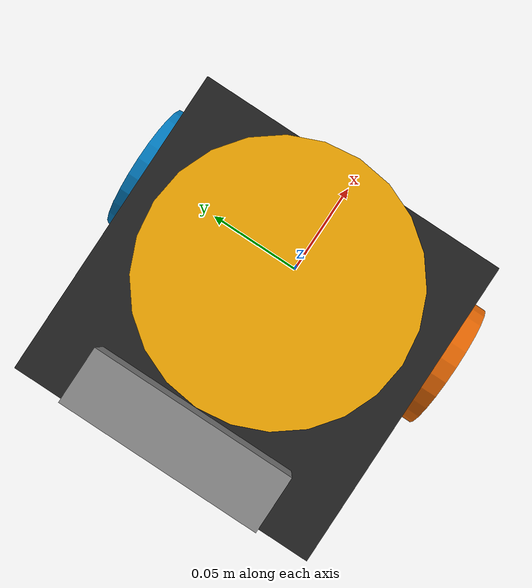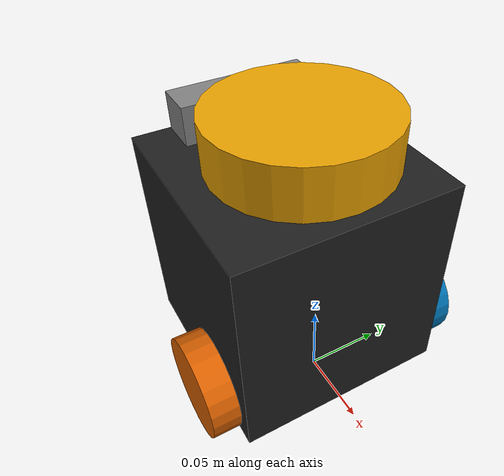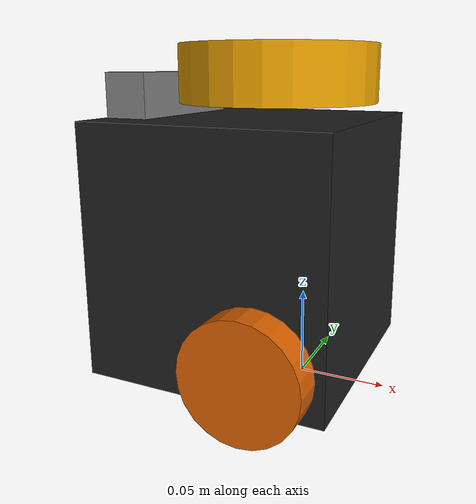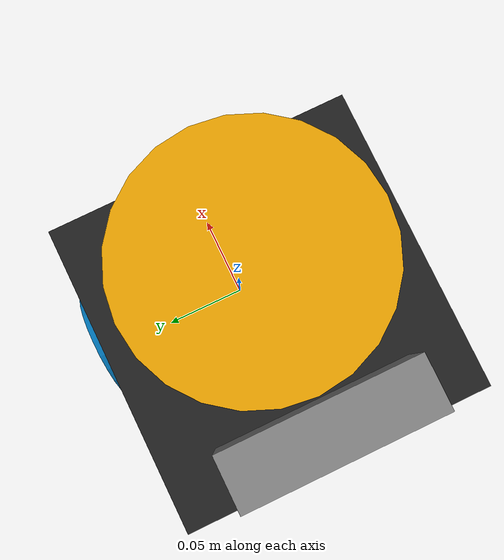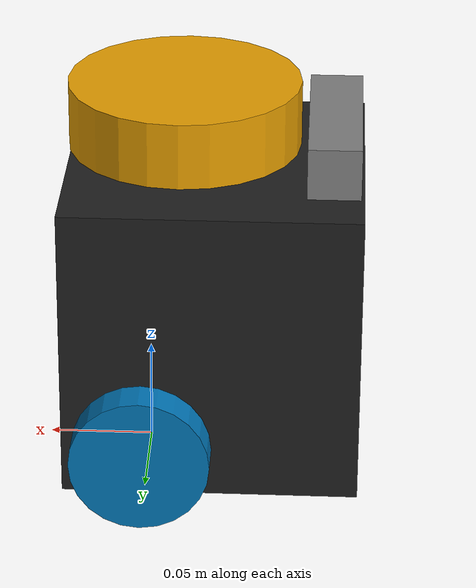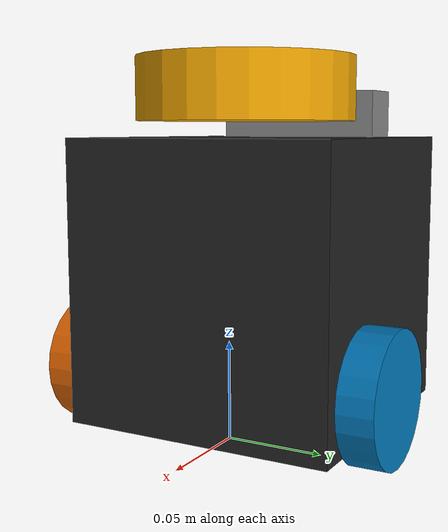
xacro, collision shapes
<?xml version="1.0" ?>
<robot name="turtlebot3_burger" xmlns:xacro="http://ros.org/wiki/xacro">

  <xacro:include filename="$(find turtlebot3_description)/urdf/common_properties.xacro"/>
  <xacro:include filename="$(find turtlebot3_description)/urdf/turtlebot3_burger.gazebo.xacro"/>

  <!-- ######################################################################## Intel Realsense D435 Camera #################################################### -->
  <!-- Properties -->

  <xacro:property name="M_PI" value="3.1415926535897931" />

  <!-- The following values are approximate, and the camera node
  publishing TF values with actual calibrated camera extrinsic values -->
  <xacro:property name="d435_cam_depth_to_left_ir_offset" value="0.0"/>
  <xacro:property name="d435_cam_depth_to_right_ir_offset" value="-0.050"/>
  <xacro:property name="d435_cam_depth_to_color_offset" value="0.015"/>

  <!-- The following values model the aluminum peripherial case for the
  D435 camera, with the camera joint represented by the actual
  peripherial camera tripod mount -->
  <xacro:property name="d435_cam_width" value="0.090"/>
  <xacro:property name="d435_cam_height" value="0.025"/>
  <xacro:property name="d435_cam_depth" value="0.02505"/>
  <xacro:property name="d435_cam_mount_from_center_offset" value="0.0149"/>

  <!-- The following offset is relative the the physical D435 camera peripherial
  camera tripod mount -->
  <xacro:property name="d435_cam_depth_px" value="${d435_cam_mount_from_center_offset}"/>
  <xacro:property name="d435_cam_depth_py" value="0.0175"/>
  <xacro:property name="d435_cam_depth_pz" value="${d435_cam_height/2}"/>

  <material name="aluminum">
  	<color rgba="0.5 0.5 0.5 1"/>
  </material>

  <!-- camera body, with origin at bottom screw mount -->
  <joint name="realsense_joint" type="fixed">
  	<parent link="base_link"/>
  	<child link="camera_bottom_screw_frame" />
        <origin xyz="-0.08788 0 0.141257" rpy="0 0 3.14159"/>
        <axis xyz="0 0 1"/>
  </joint>

 <link name="camera_bottom_screw_frame"/>

 <joint name="camera_link_joint" type="fixed">
      <origin xyz="0 0.0175 0.0125" rpy="0 0 0"/>
      <parent link="camera_bottom_screw_frame"/>
      <child link="camera_link" />
 </joint>

 <link name="camera_link">
      <visual>
      <origin xyz="0.0149 -0.02505 0" rpy="1.570796327 0 1.570796327"/>
        <geometry>
          <mesh filename="package://turtlebot3_description/meshes/realsense/d435.dae" />

        </geometry>
        <material name="aluminum"/>
      </visual>
      <collision>
        <origin xyz="0 -0.0175 0" rpy="0 0 0"/>
        <geometry>
        <box size="0.02505 0.090 0.025"/>
        </geometry>
      </collision>
      <inertial>
        <!-- The following are not reliable values, and should not be used for modeling -->
        <mass value="0.564" />
        <origin xyz="0 0 0" />
        <inertia ixx="0.003881243" ixy="0.0" ixz="0.0" iyy="0.000498940" iyz="0.0" izz="0.003879257" />
      </inertial>
   </link>

   <!-- camera depth joints and links -->
    <joint name="camera_depth_joint" type="fixed">
      <origin xyz="0 0 0" rpy="0 0 0"/>
      <parent link="camera_link"/>
      <child link="camera_depth_frame" />
    </joint>
    <link name="camera_depth_frame"/>

    <joint name="camera_depth_optical_joint" type="fixed">
      <origin xyz="0 0 0" rpy="-1.570796327 0 -1.570796327" />
      <parent link="camera_depth_frame" />
      <child link="camera_depth_optical_frame" />
    </joint>
    <link name="camera_depth_optical_frame"/>

    <!-- camera left IR joints and links -->
    <joint name="camera_left_ir_joint" type="fixed">
      <origin xyz="0 0.0 0" rpy="0 0 0" />
      <parent link="camera_depth_frame" />
      <child link="camera_left_ir_frame" />
    </joint>
    <link name="camera_left_ir_frame"/>

    <joint name="camera_left_ir_optical_joint" type="fixed">
      <origin xyz="0 0 0" rpy="-1.570796327 0 -1.570796327" />
      <parent link="camera_left_ir_frame" />
      <child link="camera_left_ir_optical_frame" />
    </joint>
    <link name="camera_left_ir_optical_frame"/>

    <!-- camera right IR joints and links -->
    <joint name="camera_right_ir_joint" type="fixed">
      <origin xyz="0 -0.050 0" rpy="0 0 0" />
      <parent link="camera_depth_frame" />
      <child link="camera_right_ir_frame" />
    </joint>
    <link name="camera_right_ir_frame"/>

    <joint name="camera_right_ir_optical_joint" type="fixed">
      <origin xyz="0 0 0" rpy="-1.570796327 0 -1.570796327" />
      <parent link="camera_right_ir_frame" />
      <child link="camera_right_ir_optical_frame" />
    </joint>
    <link name="camera_right_ir_optical_frame"/>

    <!-- camera color joints and links -->
    <joint name="camera_color_joint" type="fixed">
      <origin xyz="0 0.015 0" rpy="0 0 0" />
      <parent link="camera_depth_frame" />
      <child link="camera_color_frame" />
    </joint>
    <link name="camera_color_frame"/>

    <joint name="camera_color_optical_joint" type="fixed">
      <origin xyz="0 0 0" rpy="-1.570796327 0 -1.570796327" />
      <parent link="camera_color_frame" />
      <child link="camera_color_optical_frame" />
    </joint>
    <link name="camera_color_optical_frame"/>

  <!-- ######################################################################## Turtlebot3 Burger #################################################### -->
  <link name="base_footprint"/>

  <joint name="base_joint" type="fixed">
    <parent link="base_footprint"/>
    <child link="base_link"/>
    <origin xyz="0.0 0.0 0.010" rpy="0 0 0"/>
  </joint>

  <link name="base_link">
    <visual>
      <origin xyz="-0.032 0 0.0" rpy="0 0 0"/>
      <geometry>
        <mesh filename="package://turtlebot3_description/meshes/bases/burger_base.stl" scale="0.001 0.001 0.001"/>
      </geometry>
      <material name="light_black"/>
    </visual>

    <collision>
      <origin xyz="-0.032 0 0.070" rpy="0 0 0"/>
      <geometry>
        <box size="0.140 0.140 0.143"/>
      </geometry>
    </collision>

    <inertial>
      <origin xyz="0 0 0" rpy="0 0 0"/>
      <mass value="8.2573504e-01"/>
      <inertia ixx="2.2124416e-03" ixy="-1.2294101e-05" ixz="3.4938785e-05"
               iyy="2.1193702e-03" iyz="-5.0120904e-06"
               izz="2.0064271e-03" />
    </inertial>
  </link>

  <joint name="wheel_left_joint" type="continuous">
    <parent link="base_link"/>
    <child link="wheel_left_link"/>
    <origin xyz="0.0 0.08 0.023" rpy="-1.57 0 0"/>
    <axis xyz="0 0 1"/>
  </joint>

  <link name="wheel_left_link">
    <visual>
      <origin xyz="0 0 0" rpy="1.57 0 0"/>
      <geometry>
        <mesh filename="package://turtlebot3_description/meshes/wheels/left_tire.stl" scale="0.001 0.001 0.001"/>
      </geometry>
      <material name="dark"/>
    </visual>

    <collision>
      <origin xyz="0 0 0" rpy="0 0 0"/>
      <geometry>
        <cylinder length="0.018" radius="0.033"/>
      </geometry>
    </collision>

    <inertial>
      <origin xyz="0 0 0" />
      <mass value="2.8498940e-02" />
      <inertia ixx="1.1175580e-05" ixy="-4.2369783e-11" ixz="-5.9381719e-09"
               iyy="1.1192413e-05" iyz="-1.4400107e-11"
               izz="2.0712558e-05" />
      </inertial>
  </link>

  <joint name="wheel_right_joint" type="continuous">
    <parent link="base_link"/>
    <child link="wheel_right_link"/>
    <origin xyz="0.0 -0.080 0.023" rpy="-1.57 0 0"/>
    <axis xyz="0 0 1"/>
  </joint>

  <link name="wheel_right_link">
    <visual>
      <origin xyz="0 0 0" rpy="1.57 0 0"/>
      <geometry>
        <mesh filename="package://turtlebot3_description/meshes/wheels/right_tire.stl" scale="0.001 0.001 0.001"/>
      </geometry>
      <material name="dark"/>
    </visual>

    <collision>
      <origin xyz="0 0 0" rpy="0 0 0"/>
      <geometry>
        <cylinder length="0.018" radius="0.033"/>
      </geometry>
    </collision>

    <inertial>
      <origin xyz="0 0 0" />
      <mass value="2.8498940e-02" />
      <inertia ixx="1.1175580e-05" ixy="-4.2369783e-11" ixz="-5.9381719e-09"
               iyy="1.1192413e-05" iyz="-1.4400107e-11"
               izz="2.0712558e-05" />
      </inertial>
  </link>

  <joint name="caster_back_joint" type="fixed">
    <parent link="base_link"/>
    <child link="caster_back_link"/>
    <origin xyz="-0.081 0 -0.004" rpy="-1.57 0 0"/>
  </joint>

  <link name="caster_back_link">
    <collision>
      <origin xyz="0 0.001 0" rpy="0 0 0"/>
      <geometry>
        <box size="0.030 0.009 0.020"/>
      </geometry>
    </collision>

    <inertial>
      <origin xyz="0 0 0" />
      <mass value="0.005" />
      <inertia ixx="0.001" ixy="0.0" ixz="0.0"
               iyy="0.001" iyz="0.0"
               izz="0.001" />
    </inertial>
  </link>

  <joint name="imu_joint" type="fixed">
    <parent link="base_link"/>
    <child link="imu_link"/>
    <origin xyz="-0.032 0 0.068" rpy="0 0 0"/>
  </joint>

  <link name="imu_link"/>

  <joint name="scan_joint" type="fixed">
    <parent link="base_link"/>
    <child link="base_scan"/>
    <origin xyz="-0.032 0 0.172" rpy="0 0 0"/>
  </joint>

  <link name="base_scan">
    <visual>
      <origin xyz="0 0 0.0" rpy="0 0 0"/>
      <geometry>
        <mesh filename="package://turtlebot3_description/meshes/sensors/lds.stl" scale="0.001 0.001 0.001"/>
      </geometry>
      <material name="dark"/>
    </visual>

    <collision>
      <origin xyz="0.015 0 -0.0065" rpy="0 0 0"/>
      <geometry>
        <cylinder length="0.0315" radius="0.055"/>
      </geometry>
    </collision>

    <inertial>
      <mass value="0.114" />
      <origin xyz="0 0 0" />
      <inertia ixx="0.001" ixy="0.0" ixz="0.0"
               iyy="0.001" iyz="0.0"
               izz="0.001" />
    </inertial>
  </link>

</robot>
